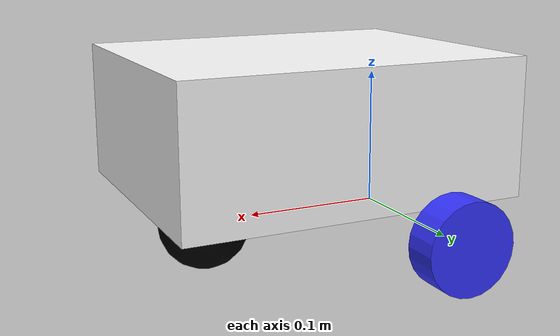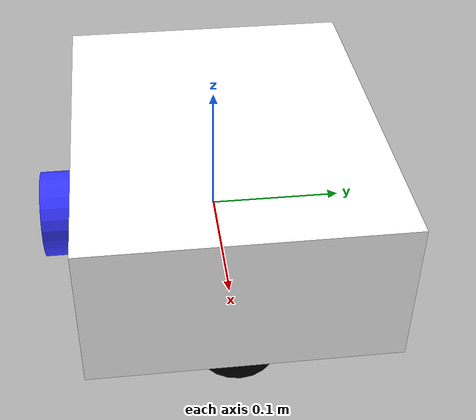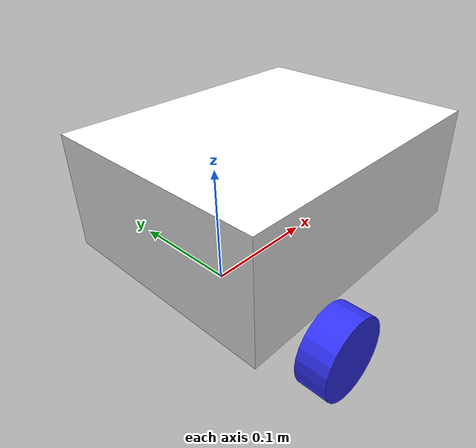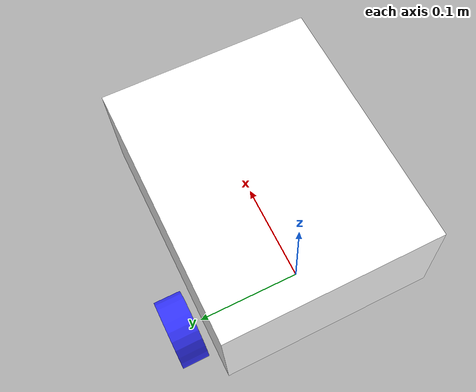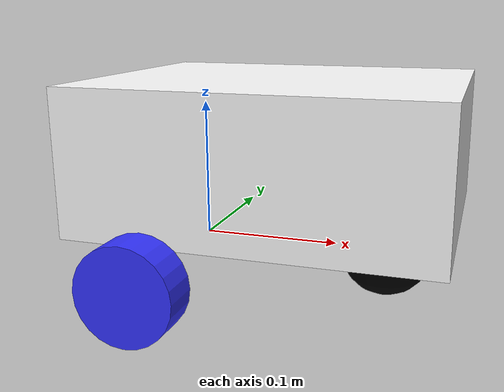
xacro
<?xml version="1.0"?>
<robot xmlns:xacro="http://www.ros.org/wiki/xacro">

   <xacro:include filename="inertial_macros.xacro"/>

<!-- This version for gazebo, using real robot dimensions -->

    <material name="white" >
        <color rgba="1 1 1 1" />
    </material>

    <material name="orange" >
        <color rgba="1 0.3 0.1 1" />
    </material>

    <material name="blue" >
        <color rgba="0.2 0.2 1 1" />
    </material>

    <material name="red" >
        <color rgba="1 0 0 1" />
    </material>

    <material name="black" >
        <color rgba="0 0 0 1" />
    </material>

    <!-- BASE LINK -->
    <link name="base_link">

    </link>

    <joint name="chassis_joint" type="fixed">
        <parent link="base_link"/>
        <child link="chassis"/>
        <origin xyz="-0.063 0 0.02"/>
    </joint>

    <!-- CHASSIS LINK -->
    <link name="chassis">
        <visual>
            <origin xyz="0.125 0 0.05"/>
            <geometry>
                <box size="0.25 0.2 0.1"/>
            </geometry>
            <material name="white"/>
        </visual>
        <collision>
            <origin xyz="0.125 0 0.05"/>
            <geometry>
                <box size="0.25 0.2 0.1"/>
            </geometry>
        </collision>
        <xacro:inertial_box mass="0.5" x="0.25" y="0.2" z="0.1" >
            <origin xyz ="0.125 0 0.05" rpy = "0 0 0"/>
        </xacro:inertial_box>
    </link>

    <gazebo reference="chassis">
        <material>Gazebo/White</material>
    </gazebo>

    <!-- LEFT WHEEL LINK -->
    <joint name="left_wheel_joint" type="continuous" >
        <parent link="base_link"/>
        <child link = "left_wheel"/>
        <origin xyz="0 0.12 0" rpy="-${pi/2} 0 0"/>
        <axis xyz = "0 0 1" />
    </joint>

    <link name = "left_wheel">
        <visual>
            <geometry>
                <cylinder radius="0.033" length="0.026"/>
            </geometry>
            <material name="blue"/>
        </visual>
        <collision>
            <geometry>
                <cylinder radius="0.033" length="0.026"/>
            </geometry>
        </collision>
        <xacro:inertial_cylinder mass="0.1" length ="0.026" radius="0.033">
            <origin xyz ="0 0 0" rpy = "0 0 0"/>
        </xacro:inertial_cylinder>
    </link>

    <gazebo reference="left_wheel">
        <material>Gazebo/Blue</material>
    </gazebo>

    <!-- RIGHT WHEEL LINK -->
    <joint name="right_wheel_joint" type="continuous" >
        <parent link="base_link"/>
        <child link = "right_wheel"/>
        <origin xyz="0 -0.12 0" rpy="${pi/2} 0 0"/>
        <axis xyz = "0 0 -1" />
    </joint>

    <link name = "right_wheel">
        <visual>
            <geometry>
                <cylinder radius="0.033" length="0.026"/>
            </geometry>
            <material name="blue"/>
        </visual>
        <collision>
            <geometry>
                <cylinder radius="0.033" length="0.026"/>
            </geometry>
       </collision>
       <xacro:inertial_cylinder mass="0.1" length ="0.026" radius="0.033" >
            <origin xyz ="0 0 0" rpy = "0 0 0"/>
       </xacro:inertial_cylinder>
    </link>

    <gazebo reference="right_wheel">
        <material>Gazebo/Blue</material>
    </gazebo>

    <!-- CASTER WHEEL LINK -->
    <joint name = "caster_wheel_joint" type="fixed">
        <parent link="chassis"/>
        <child link="caster_wheel"/>
        <origin xyz="0.2 0 -0.02"/>
    </joint>

    <link name = "caster_wheel">
        <visual>
            <geometry>
                <sphere radius="0.033" />
            </geometry>
            <material name="black"/>
       </visual>
       <collision>
            <geometry>
                <sphere radius="0.033" />
            </geometry>
       </collision>
       <xacro:inertial_sphere mass="0.5" radius="0.033" >
            <origin xyz ="0 0 0" rpy = "0 0 0"/>
       </xacro:inertial_sphere>
    </link>

    <gazebo reference="caster_wheel">
        <material>Gazebo/Black</material>
        <mu1 value="0.001"/>
        <mu2 value="0.001"/>
    </gazebo>

</robot>
